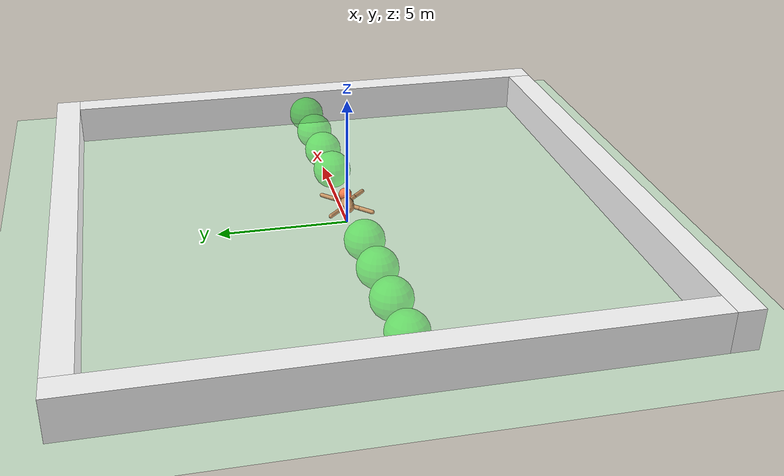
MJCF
<mujoco model="ant">
  <compiler angle="degree" coordinate="local" inertiafromgeom="true" settotalmass="40"/>
  <option integrator="RK4" timestep="0.005"/>
  <custom>
    <numeric data="0.0 0.0 0.55 1.0 0.0 0.0 0.0 0.0 1.0 0.0 -1.0 0.0 -1.0 0.0 1.0" name="init_qpos"/>
  </custom>
  <default>
    <joint armature="1" damping="1" limited="true"/>
    <geom conaffinity="1" contype="1" condim="3" density="5.0" friction="1 0.5 0.5" margin="0.01" rgba="0.8 0.6 0.4 1" material="geom"/>
  </default>
    <asset>
        <texture type="skybox" builtin="gradient" rgb1=".1 .12 .15" rgb2="0 0 0" width="100" height="100"/>
        <texture builtin="flat" height="100" name="texplane" rgb1=".1 .1 .1" rgb2=".15 .15 0.15" type="2d" width="100"/>
        <material name="MatPlane" reflectance="0.5" shininess="1" specular="1" texrepeat="50 50" texture="texplane"/>
        <texture builtin="flat" height="1278" mark="cross" markrgb="1 1 1" name="texgeom" random="0.01" rgb1="0.8 0.6 0.4" rgb2="0.8 0.6 0.4" type="cube" width="127"/>
        <material name="geom" texture="texgeom" texuniform="true"/>
    </asset>
  <worldbody>
    <light directional="true" cutoff="100" exponent="1" diffuse="1 1 1" specular=".1 .1 .1" pos="0 0 1.3" dir="-0 0 -1.3" />
    <geom name='floor' material="MatPlane" pos='0 0 0' size='40 40 40' type='plane' rgba='0.8 0.9 0.8 1' condim='3' group="1"/>

    <geom name="wall-0" pos=" -0.5 -10.5  0.5" rgba="1. 1. 1. 1" size="10.5   0.5  1.0" type="box" material="" group="1" />
    <geom name="wall-1" pos="-10.5   0.5  0.5" rgba="1. 1. 1. 1" size=" 0.5  10.5  1.0" type="box" material="" group="1" />
    <geom name="wall-2" pos="  0.5  10.5  0.5" rgba="1. 1. 1. 1" size="10.5   0.5  1.0" type="box" material="" group="1" />
    <geom name="wall-3" pos=" 10.5  -0.5  0.5" rgba="1. 1. 1. 1" size=" 0.5  10.5  1.0" type="box" material="" group="1" />

    <camera name="global_camera" mode="fixed" pos="0 0 30.0" xyaxes="1 0 0 0 1 0"/>

    <body name="torso" pos="0 0 0.75">
      <geom name="torso_geom" pos="0 0 0" size="0.50 0.25 0.25" type="ellipsoid"/>
      <body name="head" pos="0.4 0 0.25">
	<camera name="front_camera" mode="fixed" pos="0 0 0" euler="90 -90 0"/>
        <geom name="head_geom" density="0.01" rgba="1.0 0.5 0.3 1" pos="0.0 0.0 0.0" size="0.25" type="sphere"/>
        <site name="head_site" pos="0.0 0.0 0.0" size="0.005" type="sphere"/>
      </body>
      <joint armature="0" damping="0" limited="false" margin="0.01" name="root" pos="0 0 0" type="free"/>
      <body name="front_left_leg" pos="0 0 0">
        <geom fromto="0.0 0.0 0.0 0.2 0.2 0.0" name="aux_1_geom" size="0.08" type="capsule"/>
        <body name="aux_1" pos="0.4 0.2 0">
          <joint axis="0 0 1" name="hip_1" pos="0.0 0.0 0.0" range="-30 30" type="hinge"/>
          <geom fromto="0.0 0.0 0.0 0.2 0.2 0.0" name="left_leg_geom" size="0.08" type="capsule"/>
          <body pos="0.2 0.2 0">
            <joint axis="-1 1 0" name="ankle_1" pos="0.0 0.0 0.0" range="30 70" type="hinge"/>
            <geom fromto="0.0 0.0 0.0 0.4 0.4 0.0" name="left_ankle_geom" size="0.08" type="capsule"/>
          </body>
        </body>
      </body>
      <body name="front_right_leg" pos="0 0 0">
        <geom fromto="0.0 0.0 0.0 -0.2 0.2 0.0" name="aux_2_geom" size="0.08" type="capsule"/>
        <body name="aux_2" pos="-0.2 0.2 0">
          <joint axis="0 0 1" name="hip_2" pos="0.0 0.0 0.0" range="-30 30" type="hinge"/>
          <geom fromto="0.0 0.0 0.0 -0.2 0.2 0.0" name="right_leg_geom" size="0.08" type="capsule"/>
          <body pos="-0.2 0.2 0">
            <joint axis="1 1 0" name="ankle_2" pos="0.0 0.0 0.0" range="-70 -30" type="hinge"/>
            <geom fromto="0.0 0.0 0.0 -0.4 0.4 0.0" name="right_ankle_geom" size="0.08" type="capsule"/>
          </body>
        </body>
      </body>
      <body name="back_leg" pos="0 0 0">
        <geom fromto="0.0 0.0 0.0 -0.2 -0.2 0.0" name="aux_3_geom" size="0.08" type="capsule"/>
        <body name="aux_3" pos="-0.2 -0.2 0">
          <joint axis="0 0 1" name="hip_3" pos="0.0 0.0 0.0" range="-30 30" type="hinge"/>
          <geom fromto="0.0 0.0 0.0 -0.2 -0.2 0.0" name="back_leg_geom" size="0.08" type="capsule"/>
          <body pos="-0.2 -0.2 0">
            <joint axis="-1 1 0" name="ankle_3" pos="0.0 0.0 0.0" range="-70 -30" type="hinge"/>
            <geom fromto="0.0 0.0 0.0 -0.4 -0.4 0.0" name="third_ankle_geom" size="0.08" type="capsule"/>
          </body>
        </body>
      </body>
      <body name="right_back_leg" pos="0 0 0">
        <geom fromto="0.0 0.0 0.0 0.2 -0.2 0.0" name="aux_4_geom" size="0.08" type="capsule"/>
        <body name="aux_4" pos="0.4 -0.2 0">
          <joint axis="0 0 1" name="hip_4" pos="0.0 0.0 0.0" range="-30 30" type="hinge"/>
          <geom fromto="0.0 0.0 0.0 0.2 -0.2 0.0" name="rightback_leg_geom" size="0.08" type="capsule"/>
          <body pos="0.2 -0.2 0">
            <joint axis="1 1 0" name="ankle_4" pos="0.0 0.0 0.0" range="30 70" type="hinge"/>
            <geom fromto="0.0 0.0 0.0 0.4 -0.4 0.0" name="fourth_ankle_geom" size="0.08" type="capsule"/>
          </body>
        </body>
      </body>
    </body>
    <geom name="target_0" pos=" 9  0 0.85" rgba="0 1 0 0.4" size="0.75" type="sphere" group="1" contype="0" conaffinity="0" />
    <geom name="target_1" pos=" 7  0 0.85" rgba="0 1 0 0.4" size="0.75" type="sphere" group="1" contype="0" conaffinity="0" />
    <geom name="target_2" pos=" 5  0 0.85" rgba="0 1 0 0.4" size="0.75" type="sphere" group="1" contype="0" conaffinity="0" />
    <geom name="target_3" pos=" 3  0 0.85" rgba="0 1 0 0.4" size="0.75" type="sphere" group="1" contype="0" conaffinity="0" />
    <geom name="target_4" pos="-3  0 0.85" rgba="0 1 0 0.4" size="0.75" type="sphere" group="1" contype="0" conaffinity="0" />
    <geom name="target_5" pos="-5  0 0.85" rgba="0 1 0 0.4" size="0.75" type="sphere" group="1" contype="0" conaffinity="0" />
    <geom name="target_6" pos="-7  0 0.85" rgba="0 1 0 0.4" size="0.75" type="sphere" group="1" contype="0" conaffinity="0" />
    <geom name="target_7" pos="-9  0 0.85" rgba="0 1 0 0.4" size="0.75" type="sphere" group="1" contype="0" conaffinity="0" />
  </worldbody>
  <actuator>
    <motor ctrllimited="true" ctrlrange="-1.0 1.0" joint="hip_4" gear="150"/>
    <motor ctrllimited="true" ctrlrange="-1.0 1.0" joint="ankle_4" gear="150"/>
    <motor ctrllimited="true" ctrlrange="-1.0 1.0" joint="hip_1" gear="150"/>
    <motor ctrllimited="true" ctrlrange="-1.0 1.0" joint="ankle_1" gear="150"/>
    <motor ctrllimited="true" ctrlrange="-1.0 1.0" joint="hip_2" gear="150"/>
    <motor ctrllimited="true" ctrlrange="-1.0 1.0" joint="ankle_2" gear="150"/>
    <motor ctrllimited="true" ctrlrange="-1.0 1.0" joint="hip_3" gear="150"/>
    <motor ctrllimited="true" ctrlrange="-1.0 1.0" joint="ankle_3" gear="150"/>
  </actuator>
  <sensor>
    <jointpos name='pos_hip_1' joint='hip_1' />
    <jointpos name='pos_hip_2' joint='hip_2' />
    <jointpos name='pos_hip_3' joint='hip_3' />
    <jointpos name='pos_hip_4' joint='hip_4' />
    <jointpos name='pos_ankle_1' joint='ankle_1' />
    <jointpos name='pos_ankle_2' joint='ankle_2' />
    <jointpos name='pos_ankle_3' joint='ankle_3' />
    <jointpos name='pos_ankle_4' joint='ankle_4' />

    <jointvel name='vel_hip_1'   joint='hip_1' />
    <jointvel name='vel_hip_2'   joint='hip_2' />
    <jointvel name='vel_hip_3'   joint='hip_3' />
    <jointvel name='vel_hip_4'   joint='hip_4' />
    <jointvel name='vel_ankle_1' joint='ankle_1' />
    <jointvel name='vel_ankle_2' joint='ankle_2' />
    <jointvel name='vel_ankle_3' joint='ankle_3' />
    <jointvel name='vel_ankle_4' joint='ankle_4' />
  </sensor>
</mujoco>
